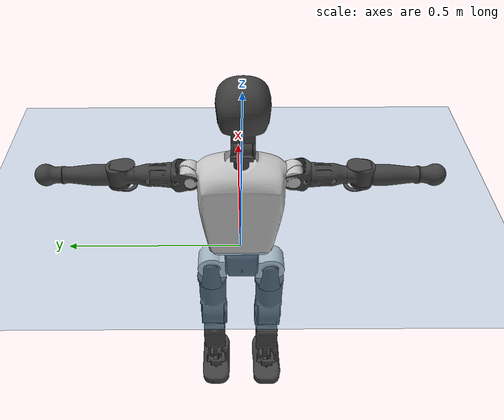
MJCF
<mujoco model="T1">
  <compiler angle="radian" assetdir="assets" balanceinertia="true" inertiafromgeom="false"/>

  <option timestep="0.005" density="1.2" viscosity="2e-05"/>

  <size nkey="1"/>

  <visual>
    <quality shadowsize="8192"/>
    <map shadowclip="0.5"/>
  </visual>

  <default>
    <default class="/">
      <joint armature="0.01" damping="0.01" frictionloss="0.1"/>
      <geom contype="0" conaffinity="0" group="1" solref="-1000 -80"/>
      <site size="0.01 0.005 0.005" group="5"/>
      <general forcelimited="true" biastype="affine" gainprm="25" biasprm="0 -25 -0.6"/>
      <default class="t1">
        <geom rgba="0.25 0.25 0.25 1"/>
        <default class="visual">
          <geom type="mesh" group="2"/>
        </default>
        <default class="collision">
          <geom group="3"/>
        </default>
        <default class="foot">
          <geom size="0.1115 0.05 0.015" type="box" condim="6" group="4" priority="1" solimp="0.015 1 0.015"/>
        </default>
        <default class="reward_collision_sphere">
          <geom group="5" rgba="1 0 0 1"/>
        </default>
      </default>
    </default>
  </default>

  <asset>
    <texture type="skybox" colorspace="auto" name="//unnamed_texture_0" builtin="gradient" rgb1="0.95 0.95 0.95" rgb2="0.95 0.95 0.95" width="100" height="600"/>
    <texture type="2d" colorspace="auto" name="texplane" builtin="checker" rgb1="0.345 0.575 0.748" rgb2="0.345 0.575 0.748" markrgb="1 1 1" width="512" height="512"/>
    <material name="MatPlane" class="/" texture="texplane" texuniform="true" texrepeat="2 2" specular="0.9"/>
    <mesh name="Trunk" class="/" file="Trunk.stl"/>
    <mesh name="H1" class="/" file="H1.stl"/>
    <mesh name="H2" class="/" file="H2.stl"/>
    <mesh name="AL1" class="/" file="AL1.stl"/>
    <mesh name="AL2" class="/" file="AL2.stl"/>
    <mesh name="AL3" class="/" file="AL3.stl"/>
    <mesh name="left_hand_link" class="/" file="left_hand_link.stl"/>
    <mesh name="AR1" class="/" file="AR1.stl"/>
    <mesh name="AR2" class="/" file="AR2.stl"/>
    <mesh name="AR3" class="/" file="AR3.stl"/>
    <mesh name="right_hand_link" class="/" file="right_hand_link.stl"/>
    <mesh name="Waist" class="/" file="Waist.stl"/>
    <mesh name="Hip_Pitch_Left" class="/" file="Hip_Pitch_Left.stl"/>
    <mesh name="Hip_Roll_Left" class="/" file="Hip_Roll_Left.stl"/>
    <mesh name="Hip_Yaw_Left" class="/" file="Hip_Yaw_Left.stl"/>
    <mesh name="Shank_Left" class="/" file="Shank_Left.stl"/>
    <mesh name="Ankle_Cross_Left" class="/" file="Ankle_Cross_Left.stl"/>
    <mesh name="left_foot_link" class="/" file="left_foot_link.stl"/>
    <mesh name="Hip_Pitch_Right" class="/" file="Hip_Pitch_Right.stl"/>
    <mesh name="Hip_Roll_Right" class="/" file="Hip_Roll_Right.stl"/>
    <mesh name="Hip_Yaw_Right" class="/" file="Hip_Yaw_Right.stl"/>
    <mesh name="Shank_Right" class="/" file="Shank_Right.stl"/>
    <mesh name="Ankle_Cross_Right" class="/" file="Ankle_Cross_Right.stl"/>
    <mesh name="right_foot_link" class="/" file="right_foot_link.stl"/>
  </asset>

  <worldbody>
    <geom name="floor" class="/" size="100 100 0.125" type="plane" group="0" material="MatPlane"/>
    <light name="toplight_shadow" class="/" pos="0 0 5" dir="0.0990148 0.0990148 -0.990148" type="directional" ambient="0.04 0.04 0.04" diffuse="0.55 0.55 0.55" specular="0.12 0.12 0.12"/>
    <light name="toplight_fill" class="/" pos="0 0 5" dir="0.0990148 0.0990148 -0.990148" type="directional" castshadow="false" ambient="0.04 0.04 0.04" diffuse="0.3 0.3 0.3" specular="0.08 0.08 0.08"/>
    <body name="trunk" childclass="t1" pos="-0.000161341 -0.00094529 5.67993e-05" quat="0.999999 -0.000164481 -0.00111891 0.000210919">
      <inertial pos="0.052022 -0.000756782 0.106118" quat="0.999953 0.0086466 -0.00226349 0.00377511" mass="9.78684" diaginertia="0.0778936 0.0375794 0.0609087"/>
      <joint name="//unnamed_joint_0" type="free" armature="0" damping="0" frictionloss="0"/>
      <geom name="//unnamed_geom_1" class="visual" rgba="0.76 0.76 0.76 1" mesh="Trunk"/>
      <geom name="//unnamed_geom_2" class="collision" size="0.0709243 0.0945658 0.141849" pos="0.0574015 0 0.121473" type="box"/>
      <geom name="//unnamed_geom_3" class="reward_collision_sphere" size="0.108751" pos="0.0574015 0 0.101228"/>
      <geom name="//unnamed_geom_4" class="reward_collision_sphere" size="0.0141849" pos="0.0574015 0.0737804 0"/>
      <geom name="//unnamed_geom_5" class="reward_collision_sphere" size="0.0141849" pos="0.0574015 -0.0737804 0"/>
      <geom name="//unnamed_geom_6" class="reward_collision_sphere" size="0.0141849" pos="0.0574015 0.0928765 0.18221"/>
      <geom name="//unnamed_geom_7" class="reward_collision_sphere" size="0.0141849" pos="0.0574015 -0.0928765 0.18221"/>
      <site name="imu" pos="0.0108949 0.000454003 -0.010582" size="0.00945658"/>
      <camera name="track" pos="0 -1.73601 0" quat="0.707107 0.707107 0 0" mode="trackcom"/>
      <camera name="ego_camera" pos="0.116716 0 0.425156" quat="-0.5 -0.5 0.5 0.5"/>
      <body name="H1" pos="0.0565052 -0.000151099 0.243287" quat="1 6.80015e-05 0.00017915 -2.90657e-05">
        <inertial pos="-0.00108947 -0.0012841 0.0581182" quat="0.763605 -0.0114174 0.00206739 0.645579" mass="0.370338" diaginertia="0.000188682 0.000108407 0.000158708"/>
        <joint name="AAHead_yaw" pos="0 0 0" axis="-0.00491476 -0.000509053 0.999988" stiffness="0.00289818" range="-1.52478 1.57869" armature="0.0107484" damping="0.00799224" frictionloss="0.107398"/>
        <geom name="//unnamed_geom_8" class="visual" mesh="H1"/>
        <body name="H2" pos="-0.00142988 -0.00267971 0.0635703" quat="1 2.27324e-05 -5.74657e-06 -1.1758e-05">
          <inertial pos="0.00911058 -0.00215833 0.0972261" quat="0.988231 0.113109 -0.0773864 -0.0679544" mass="0.53799" diaginertia="0.00162222 0.000919275 0.00183199"/>
          <joint name="Head_pitch" pos="0 0 0" axis="-0.00228022 -0.999994 0.00260997" range="-1.22694 0.367983" armature="0.0101947" damping="0" frictionloss="0.0908616"/>
          <geom name="//unnamed_geom_9" class="visual" mesh="H2"/>
          <geom name="//unnamed_geom_10" class="collision" size="0.0756526" pos="0.00956692 0 0.11135"/>
          <geom name="//unnamed_geom_11" class="reward_collision_sphere" size="0.0851092" pos="0.0191338 0 0.101228"/>
        </body>
      </body>
      <body name="AL1" pos="0.0550423 0.0935317 0.219151" quat="0.999998 0.000363962 0.00145005 -0.000904901">
        <inertial pos="-0.00292138 0.0386805 -0.000139728" quat="0.50383 0.495367 -0.504089 0.496649" mass="0.442045" diaginertia="0.00108286 0.000607435 0.000296766"/>
        <joint name="Left_Shoulder_Pitch" pos="0 0 0" axis="0.00107436 0.999891 -0.0147224" stiffness="0.00185548" range="-3.33058 1.27578" armature="0.00952548" damping="0" frictionloss="0.0995767"/>
        <geom name="//unnamed_geom_12" class="visual" rgba="0.76 0.76 0.76 1" mesh="AL1"/>
        <body name="AL2" pos="-0.0013421 0.0413357 -0.000293353" quat="1 3.81793e-06 5.16572e-06 -1.94944e-05">
          <inertial pos="0.00350929 0.0356938 -0.0011582" quat="0.484796 0.515192 -0.487085 0.512151" mass="0.138584" diaginertia="0.000330125 0.000171309 0.000188622"/>
          <joint name="Left_Shoulder_Roll" pos="0 0 0" axis="-1 0.00036995 -0.000459893" range="-1.55631 1.74769" armature="0.010785" damping="0.00813226" frictionloss="0.0955494"/>
          <geom name="//unnamed_geom_13" class="visual" mesh="AL2"/>
          <body name="AL3" pos="0.000547861 0.0522612 0.00102137" quat="1 0.000204459 0.000349324 -0.000334753">
            <inertial pos="0.00226064 0.071363 -0.00061264" quat="0.705305 0.708877 0.00239071 -0.00581252" mass="0.808468" diaginertia="0.01033 0.00615927 0.0006211"/>
            <joint name="Left_Elbow_Pitch" pos="0 0 0" axis="0.00350103 -0.999993 0.00108544" range="-2.32728 2.26607" armature="0.0106398" damping="0.0148692" frictionloss="0.0920078"/>
            <geom name="//unnamed_geom_14" class="visual" mesh="AL3"/>
            <geom name="//unnamed_geom_15" class="collision" size="0.0283697 0.0709243" pos="0 0.0434002 0" quat="0.707105 0.707108 0 0" type="cylinder"/>
            <geom name="//unnamed_geom_16" class="reward_collision_sphere" size="0.0340437"/>
            <body name="left_hand_link" pos="0.00166344 0.126676 -0.00128067" quat="0.999999 0.000419576 -0.000635898 -0.0010848">
              <inertial pos="-0.00273102 0.0955971 0.000855051" quat="0.704782 0.709421 0.00180685 0.00104963" mass="0.27552" diaginertia="0.00630803 0.00401182 0.000235916"/>
              <joint name="Left_Elbow_Yaw" pos="0 0 0" axis="0.00436881 -0.00460838 0.99998" range="-2.44979 -0.0486595" armature="0.00986463" damping="0.0151332" frictionloss="0.0968681"/>
              <geom name="//unnamed_geom_17" class="visual" mesh="left_hand_link"/>
              <geom name="//unnamed_geom_18" class="collision" size="0.0283697 0.082745" pos="0 0.112841 0" quat="0.707105 0.707108 0 0" type="cylinder"/>
              <geom name="//unnamed_geom_19" class="reward_collision_sphere" size="0.0472829"/>
              <geom name="//unnamed_geom_20" class="reward_collision_sphere" size="0.033098" pos="0 0.0954805 0"/>
              <geom name="//unnamed_geom_21" class="reward_collision_sphere" size="0.033098" pos="0 0.186621 0"/>
            </body>
          </body>
        </body>
      </body>
      <body name="AR1" pos="0.0545723 -0.0940225 0.219692" quat="1 0.000112184 0.000354087 9.67544e-06">
        <inertial pos="-0.00247941 -0.04174 0.00082018" quat="0.506373 0.488747 -0.506734 0.49793" mass="0.43021" diaginertia="0.00104933 0.000614276 0.000301314"/>
        <joint name="Right_Shoulder_Pitch" pos="0 0 0" axis="-0.00107673 -0.999862 0.0165483" range="-1.22095 3.28885" armature="0.0107155" damping="0.0111541" frictionloss="0.0911981"/>
        <geom name="//unnamed_geom_22" class="visual" rgba="0.76 0.76 0.76 1" mesh="AR1"/>
        <body name="AR2" pos="0.00222488 -0.0376922 -0.00146711" quat="0.999999 0.000515415 -0.000705242 0.00120755">
          <inertial pos="0.00205062 -0.0327998 0.0011579" quat="0.509985 0.487827 -0.513216 0.488416" mass="0.13063" diaginertia="0.000321496 0.000175918 0.00019008"/>
          <joint name="Right_Shoulder_Roll" pos="0 0 0" axis="-0.999985 -0.002361 -0.00492466" range="-1.74177 1.56527" armature="0.00939034" damping="0.00745333" frictionloss="0.106365"/>
          <geom name="//unnamed_geom_23" class="visual" mesh="AR2"/>
          <body name="AR3" pos="0.00125356 -0.0533134 -0.00239338" quat="1 -4.76525e-05 -2.11169e-05 -3.01383e-05">
            <inertial pos="-9.70642e-05 -0.0769309 -1.47963e-05" quat="0.70387 0.710223 0.00964631 -0.00753638" mass="0.858903" diaginertia="0.0103035 0.00636561 0.000680163"/>
            <joint name="Right_Elbow_Pitch" pos="0 0 0" axis="-0.0106606 0.999917 -0.00730262" range="-2.32409 2.23997" armature="0.00804913" damping="0.00588991" frictionloss="0.103272"/>
            <geom name="//unnamed_geom_24" class="visual" mesh="AR3"/>
            <geom name="//unnamed_geom_25" class="collision" size="0.0283697 0.0709243" pos="0 -0.0434002 0" quat="0.707105 0.707108 0 0" type="cylinder"/>
            <geom name="//unnamed_geom_26" class="reward_collision_sphere" size="0.0340437"/>
            <body name="right_hand_link" pos="-0.00074959 -0.127799 -0.00147189" quat="0.999999 -0.000768849 -4.28538e-05 -0.000906617">
              <inertial pos="-0.00032547 -0.0957464 0.0037239" quat="0.70624 0.707973 0.000175145 -3.2614e-05" mass="0.277539" diaginertia="0.00650667 0.00396988 0.000226769"/>
              <joint name="Right_Elbow_Yaw" pos="0 0 0" axis="0.00522561 -0.000277367 0.999986" range="-0.00713451 2.47657" armature="0.0108536" damping="0" frictionloss="0.105238"/>
              <geom name="//unnamed_geom_27" class="visual" mesh="right_hand_link"/>
              <geom name="//unnamed_geom_28" class="collision" size="0.0283697 0.082745" pos="0 -0.112841 0" quat="0.707105 0.707108 0 0" type="cylinder"/>
              <geom name="//unnamed_geom_29" class="reward_collision_sphere" size="0.0472829"/>
              <geom name="//unnamed_geom_30" class="reward_collision_sphere" size="0.033098" pos="0 -0.0954805 0"/>
              <geom name="//unnamed_geom_31" class="reward_collision_sphere" size="0.033098" pos="0 -0.186621 0"/>
            </body>
          </body>
        </body>
      </body>
      <body name="Waist" pos="0.0600527 -0.00400902 -0.114015" quat="1 0.000210071 -0.000182121 -0.000666427">
        <inertial pos="-0.000182916 0.000322472 0.00639526" quat="0.9838 0.0113315 -0.178607 0.0104483" mass="2.11063" diaginertia="0.00412139 0.0025322 0.00489679"/>
        <joint name="Waist" pos="0 0 0" axis="0.00941599 -0.00917198 0.999914" range="-1.59073 1.51602" armature="0.00972133" damping="0.0169402" frictionloss="0.107229"/>
        <geom name="//unnamed_geom_32" class="visual" mesh="Waist"/>
        <body name="Hip_Pitch_Left" pos="0.000469271 0.0932698 0.000194048" quat="1 -3.04724e-05 5.59108e-05 -0.00017115">
          <inertial pos="0.000765945 -0.0078097 -0.0187687" quat="0.975528 0.219608 0.0101067 0.00395264" mass="0.870247" diaginertia="0.00144011 0.000743486 0.00133915"/>
          <joint name="Left_Hip_Pitch" pos="0 0 0" axis="0.0132482 0.999899 -0.00504787" range="-1.81097 1.6243" armature="0.00995535" damping="0" frictionloss="0.0919677"/>
          <geom name="//unnamed_geom_33" class="visual" rgba="0.76 0.76 0.76 1" mesh="Hip_Pitch_Left"/>
          <body name="Hip_Roll_Left" pos="0.000934835 0.00208718 -0.0184923" quat="0.999999 -0.00143045 -0.000108565 -0.00034787">
            <inertial pos="-0.00146661 0.00013047 -0.0551903" quat="0.705781 -0.007266 -0.00448211 0.708378" mass="0.319063" diaginertia="0.00139698 0.000726343 0.000529868"/>
            <joint name="Left_Hip_Roll" pos="0 0 0" axis="-0.99994 -0.00933106 0.00579361" stiffness="0.00738761" range="-1.56226 0.19011" armature="0.0090351" damping="0.0150961" frictionloss="0.0996351"/>
            <geom name="//unnamed_geom_34" class="visual" mesh="Hip_Roll_Left"/>
            <geom name="//unnamed_geom_35" class="reward_collision_sphere" size="0.0520112"/>
            <body name="Hip_Yaw_Left" pos="0.00113197 -0.000956417 -0.084309" quat="1 -4.02703e-05 6.20813e-05 2.07207e-05">
              <inertial pos="-0.00644717 -0.00160681 -0.090579" quat="0.701356 -0.0248069 -0.0393131 0.711294" mass="1.76285" diaginertia="0.0205521 0.0121829 0.00265829"/>
              <joint name="Left_Hip_Yaw" pos="0 0 0" axis="-0.00373654 0.00201635 -0.999991" range="-1.05671 0.999358" armature="0.00943191" damping="0.0119577" frictionloss="0.0933848"/>
              <geom name="//unnamed_geom_36" class="visual" mesh="Hip_Yaw_Left"/>
              <geom name="//unnamed_geom_37" class="collision" size="0.0472829 0.0756526" type="cylinder"/>
              <body name="Shank_Left" pos="-0.0121143 -0.00259501 -0.137112" quat="1 0.00024524 -0.000261568 -0.000310659">
                <inertial pos="-0.00561889 -0.00174111 -0.125703" quat="0.997081 0.00181954 -0.0367366 0.0669021" mass="1.51552" diaginertia="0.0282955 0.0172342 0.00194517"/>
                <joint name="Left_Knee_Pitch" pos="0 0 0" axis="-0.00473195 0.999986 -0.00240152" range="-0.0087433 2.3193" armature="0.0107387" damping="0" frictionloss="0.0992953"/>
                <geom name="//unnamed_geom_38" class="visual" mesh="Shank_Left"/>
                <geom name="//unnamed_geom_39" class="collision" size="0.0472829 0.0709243" pos="0 0 -0.121473" type="cylinder"/>
                <geom name="//unnamed_geom_40" class="reward_collision_sphere" size="0.0614678"/>
                <body name="Ankle_Cross_Left" pos="0.00207934 0.00204374 -0.286561" quat="0.999999 -0.000813014 0.00059927 -0.000944788">
                  <inertial pos="-0.00412433 -0.00232981 -0.00744651" quat="0.447718 0.541973 0.556921 0.442327" mass="0.0615133" diaginertia="2.2976e-05 1.29808e-05 1.22951e-05"/>
                  <joint name="Left_Ankle_Pitch" pos="0 0 0" axis="-0.00132567 0.999955 -0.00938284" range="-0.886119 0.336881" armature="0.00959669" damping="0.00654597" frictionloss="0.0935607"/>
                  <geom name="//unnamed_geom_41" class="visual" mesh="Ankle_Cross_Left"/>
                  <body name="left_foot_link" pos="-0.00262488 -0.00290567 -0.0121976" quat="1 -0.000155849 0.000222253 0.000135412">
                    <inertial pos="0.00239715 0.00024859 -0.0066268" quat="-0.00178814 0.617261 0.000713961 0.786756" mass="0.584844" diaginertia="0.0022182 0.00117449 0.00235528"/>
                    <joint name="Left_Ankle_Roll" pos="0 0 0" axis="-0.999998 -0.00130877 -0.00124919" stiffness="0.00672565" range="-0.448845 0.437157" armature="0.00804451" damping="0.000407544" frictionloss="0.0927433"/>
                    <geom name="//unnamed_geom_42" class="visual" mesh="left_foot_link"/>
                    <geom name="left_foot" class="foot" size="0.0974969 0.0456608 0.0136775" pos="0.00956692 0 -0.0151842"/>
                    <geom name="//unnamed_geom_44" class="reward_collision_sphere" size="0.0491742" pos="0.00956692 0 -0.0151842"/>
                    <geom name="//unnamed_geom_45" class="reward_collision_sphere" size="0.0283697" pos="0.0908857 -0.0199641 -0.0151842"/>
                    <geom name="//unnamed_geom_46" class="reward_collision_sphere" size="0.0283697" pos="-0.0669684 -0.0199641 -0.0151842"/>
                    <site name="left_foot" class="foot" pos="0.00956692 0 -0.0151842" size="0.00945658"/>
                  </body>
                </body>
              </body>
            </body>
          </body>
        </body>
        <body name="Hip_Pitch_Right" pos="-0.0028803 -0.0905211 -0.0014962" quat="0.999999 -7.73355e-05 0.000868367 0.00111803">
          <inertial pos="0.00141871 0.00414067 -0.0181567" quat="0.972941 -0.229954 0.020869 -0.00842402" mass="0.851534" diaginertia="0.00139903 0.000698834 0.00128931"/>
          <joint name="Right_Hip_Pitch" pos="0 0 0" axis="0.00329106 -0.999994 -0.000490041" range="-1.61657 1.78733" armature="0.00908815" damping="0.0111396" frictionloss="0.107267"/>
          <geom name="//unnamed_geom_47" class="visual" rgba="0.76 0.76 0.76 1" mesh="Hip_Pitch_Right"/>
          <body name="Hip_Roll_Right" pos="-0.00109866 -0.000317515 -0.020174" quat="1 0.000121221 0.000229801 -0.000458546">
            <inertial pos="-0.00160086 0.00251992 -0.0569929" quat="0.70781 -0.00466739 -0.00438093 0.706373" mass="0.33139" diaginertia="0.0014379 0.000747722 0.000546546"/>
            <joint name="Right_Hip_Roll" pos="0 0 0" axis="-0.99998 -0.00596074 -0.0018987" stiffness="0.000925643" range="-0.20024 1.57532" armature="0.00967556" damping="0.00518934" frictionloss="0.0913688"/>
            <geom name="//unnamed_geom_48" class="visual" mesh="Hip_Roll_Right"/>
            <geom name="//unnamed_geom_49" class="reward_collision_sphere" size="0.0520112"/>
            <body name="Hip_Yaw_Right" pos="-0.000444266 -0.00239159 -0.08151" quat="1 4.55455e-05 6.62937e-05 -2.73265e-05">
              <inertial pos="-0.00502019 -0.00189831 -0.0914304" quat="0.71445 -0.0315479 -0.0335937 0.698168" mass="1.82514" diaginertia="0.0213099 0.0124122 0.00278897"/>
              <joint name="Right_Hip_Yaw" pos="0 0 0" axis="-0.000598235 -0.004428 -0.99999" stiffness="0.00359886" range="-0.979749 0.948648" armature="0.00832374" damping="0.0207911" frictionloss="0.107481"/>
              <geom name="//unnamed_geom_50" class="visual" mesh="Hip_Yaw_Right"/>
              <geom name="//unnamed_geom_51" class="collision" size="0.0472829 0.0756526" type="cylinder"/>
              <body name="Shank_Right" pos="-0.0120245 0.00238595 -0.135592" quat="0.999999 -0.000860789 -8.09301e-05 -0.00106628">
                <inertial pos="-0.00565177 0.0024309 -0.12152" quat="0.999482 -0.00236927 -0.0253774 -0.0196518" mass="1.46595" diaginertia="0.027646 0.0172293 0.00215376"/>
                <joint name="Right_Knee_Pitch" pos="0 0 0" axis="-0.000983444 -0.999999 0.000659378" stiffness="0.000399241" range="-2.28628 -0.0593644" armature="0.00990058" damping="0.0171113" frictionloss="0.0950442"/>
                <geom name="//unnamed_geom_52" class="visual" mesh="Shank_Right"/>
                <geom name="//unnamed_geom_53" class="collision" size="0.0472829 0.0709243" pos="0 0 -0.121473" type="cylinder"/>
                <geom name="//unnamed_geom_54" class="reward_collision_sphere" size="0.0614678"/>
                <body name="Ankle_Cross_Right" pos="0.00214177 -0.00317777 -0.283897" quat="0.999999 0.00122022 7.42022e-05 -0.000172416">
                  <inertial pos="-0.00340903 0.000646369 -0.00573541" quat="0.438273 0.552265 0.55408 0.442623" mass="0.0619379" diaginertia="2.29575e-05 1.26055e-05 1.16479e-05"/>
                  <joint name="Right_Ankle_Pitch" pos="0 0 0" axis="-0.00367482 -0.999986 0.00389833" range="-0.4032 0.869187" armature="0.00948778" damping="0.00566007" frictionloss="0.0986192"/>
                  <geom name="//unnamed_geom_55" class="visual" mesh="Ankle_Cross_Right"/>
                  <body name="right_foot_link" pos="0.000840151 -0.00335001 -0.0127509" quat="1 -0.000217771 -0.000305155 2.7544e-05">
                    <inertial pos="-5.41972e-05 -0.000626364 -0.0118188" quat="0.00280242 0.618808 -0.00310351 0.785531" mass="0.581206" diaginertia="0.00215326 0.00117422 0.00226099"/>
                    <joint name="Right_Ankle_Roll" pos="0 0 0" axis="-0.999966 -0.00805557 -0.00191623" range="-0.390039 0.440033" armature="0.0107273" damping="0.00718881" frictionloss="0.0843254"/>
                    <geom name="//unnamed_geom_56" class="visual" mesh="right_foot_link"/>
                    <geom name="right_foot" class="foot" size="0.0794869 0.0444968 0.0132564" pos="0.00956692 0 -0.0151842"/>
                    <geom name="//unnamed_geom_58" class="reward_collision_sphere" size="0.0378263"/>
                    <geom name="//unnamed_geom_59" class="reward_collision_sphere" size="0.0283697" pos="0.00956692 0 -0.0151842"/>
                    <geom name="//unnamed_geom_60" class="reward_collision_sphere" size="0.0283697" pos="0.0908857 0.0199641 -0.0151842"/>
                    <geom name="//unnamed_geom_61" class="reward_collision_sphere" size="0.0283697" pos="-0.0669684 0.0199641 -0.0151842"/>
                    <site name="right_foot" class="foot" pos="0.00956692 0 -0.0151842" size="0.00945658"/>
                  </body>
                </body>
              </body>
            </body>
          </body>
        </body>
      </body>
    </body>
  </worldbody>

  <contact>
    <pair class="/" geom1="floor" geom2="left_foot" name="//unnamed_contact_0"/>
    <pair class="/" geom1="floor" geom2="right_foot" name="//unnamed_contact_1"/>
  </contact>

  <actuator>
    <general name="AAHead_yaw" class="/" joint="AAHead_yaw" forcerange="-6.27422 6.27422" gainprm="24.004" biasprm="0 -24.004 -0.565974"/>
    <general name="Head_pitch" class="/" joint="Head_pitch" forcerange="-7.13234 7.13234" gainprm="24.004" biasprm="0 -24.004 -0.565974"/>
    <general name="Left_Shoulder_Pitch" class="/" joint="Left_Shoulder_Pitch" forcerange="-17.7111 17.7111" gainprm="24.004" biasprm="0 -24.004 -0.565974"/>
    <general name="Left_Shoulder_Roll" class="/" joint="Left_Shoulder_Roll" forcerange="-18.628 18.628" gainprm="24.004" biasprm="0 -24.004 -0.565974"/>
    <general name="Left_Elbow_Pitch" class="/" joint="Left_Elbow_Pitch" forcerange="-17.207 17.207" gainprm="24.004" biasprm="0 -24.004 -0.565974"/>
    <general name="Left_Elbow_Yaw" class="/" joint="Left_Elbow_Yaw" forcerange="-17.6193 17.6193" gainprm="24.004" biasprm="0 -24.004 -0.565974"/>
    <general name="Right_Shoulder_Pitch" class="/" joint="Right_Shoulder_Pitch" forcerange="-17.1531 17.1531" gainprm="24.004" biasprm="0 -24.004 -0.565974"/>
    <general name="Right_Shoulder_Roll" class="/" joint="Right_Shoulder_Roll" forcerange="-17.3001 17.3001" gainprm="24.004" biasprm="0 -24.004 -0.565974"/>
    <general name="Right_Elbow_Pitch" class="/" joint="Right_Elbow_Pitch" forcerange="-16.3793 16.3793" gainprm="24.004" biasprm="0 -24.004 -0.565974"/>
    <general name="Right_Elbow_Yaw" class="/" joint="Right_Elbow_Yaw" forcerange="-17.67 17.67" gainprm="24.004" biasprm="0 -24.004 -0.565974"/>
    <general name="Waist" class="/" joint="Waist" forcerange="-25.7853 25.7853" gainprm="24.004" biasprm="0 -24.004 -0.565974"/>
    <general name="Left_Hip_Pitch" class="/" joint="Left_Hip_Pitch" forcerange="-43.3185 43.3185" gainprm="24.004" biasprm="0 -24.004 -0.565974"/>
    <general name="Left_Hip_Roll" class="/" joint="Left_Hip_Roll" forcerange="-27.7827 27.7827" gainprm="24.004" biasprm="0 -24.004 -0.565974"/>
    <general name="Left_Hip_Yaw" class="/" joint="Left_Hip_Yaw" forcerange="-29.5237 29.5237" gainprm="24.004" biasprm="0 -24.004 -0.565974"/>
    <general name="Left_Knee_Pitch" class="/" joint="Left_Knee_Pitch" forcerange="-50.9089 50.9089" gainprm="24.004" biasprm="0 -24.004 -0.565974"/>
    <general name="Left_Ankle_Pitch" class="/" joint="Left_Ankle_Pitch" forcerange="-20.78 20.78" gainprm="24.004" biasprm="0 -24.004 -0.565974"/>
    <general name="Left_Ankle_Roll" class="/" joint="Left_Ankle_Roll" forcerange="-12.8962 12.8962" gainprm="24.004" biasprm="0 -24.004 -0.565974"/>
    <general name="Right_Hip_Pitch" class="/" joint="Right_Hip_Pitch" forcerange="-42.2799 42.2799" gainprm="24.004" biasprm="0 -24.004 -0.565974"/>
    <general name="Right_Hip_Roll" class="/" joint="Right_Hip_Roll" forcerange="-25.607 25.607" gainprm="24.004" biasprm="0 -24.004 -0.565974"/>
    <general name="Right_Hip_Yaw" class="/" joint="Right_Hip_Yaw" forcerange="-31.3153 31.3153" gainprm="24.004" biasprm="0 -24.004 -0.565974"/>
    <general name="Right_Knee_Pitch" class="/" joint="Right_Knee_Pitch" forcerange="-55.0352 55.0352" gainprm="24.004" biasprm="0 -24.004 -0.565974"/>
    <general name="Right_Ankle_Pitch" class="/" joint="Right_Ankle_Pitch" forcerange="-19.1708 19.1708" gainprm="24.004" biasprm="0 -24.004 -0.565974"/>
    <general name="Right_Ankle_Roll" class="/" joint="Right_Ankle_Roll" forcerange="-14.2865 14.2865" gainprm="24.004" biasprm="0 -24.004 -0.565974"/>
  </actuator>

  <sensor>
    <gyro site="imu" name="imu_angular_velocity"/>
    <velocimeter site="imu" name="imu_linear_velocity"/>
    <framelinvel objtype="site" objname="left_foot" name="left_foot_global_linear_velocity"/>
    <framelinvel objtype="site" objname="right_foot" name="right_foot_global_linear_velocity"/>
  </sensor>

  <keyframe>
    <key name="home" qpos="0 0 0.6385 1 0 0 0 0 0 0 1.4 0 -0.4 0 -1.4 0 0.4 0 -0.4 0 0 0.8 -0.4 0 0.4 0 0 -0.8 0.4 0"/>
  </keyframe>
</mujoco>
